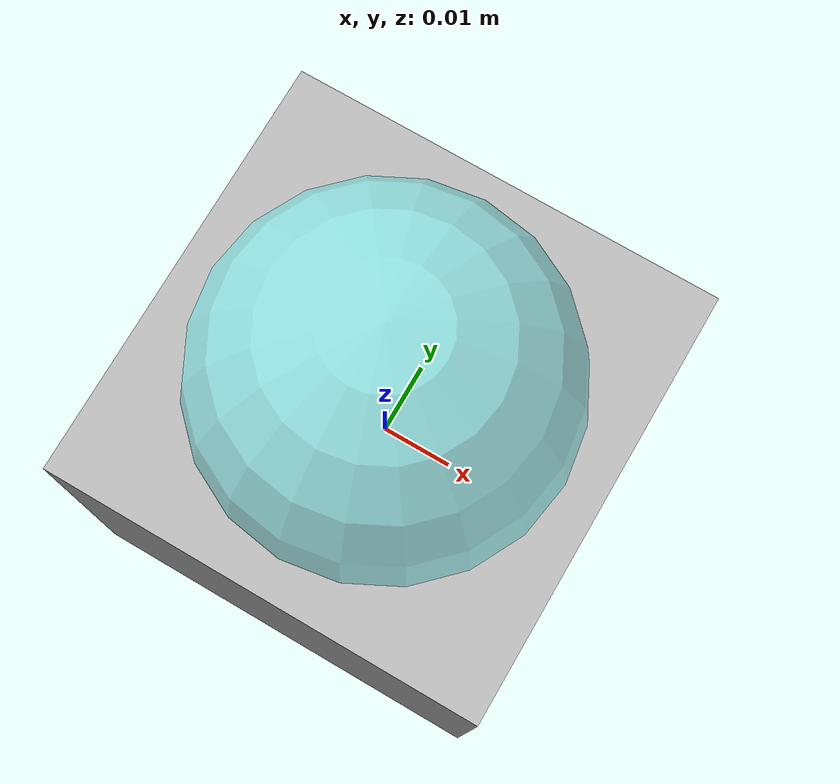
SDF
<?xml version="1.0" ?>
<sdf version="1.4">
  <model name='light_model'>
    <link name = "led_link"/>
    <link name='head'>
	    <pose>0 0 0 0 0 0</pose>
	      <inertial>
        <pose>0.01 0.025 0.025 0 -0 0</pose>
        <mass>0.05</mass>
        <inertia>
          <ixx>0.001</ixx>
          <ixy>0</ixy>
          <ixz>0</ixz>
          <iyy>0.001</iyy>
          <iyz>0</iyz>
          <izz>0.001</izz>
        </inertia>
      </inertial>
        <visual name='visual'>
          <geometry>
            <box>
              <size>0.06 0.06 0.05</size>
            </box>
          </geometry>
        </visual>
    </link>

    <link name='light_source'>
        <pose>0 0 0.025 0 0 0</pose>
        <light name='lamp' type='spot'>
          <pose>0 0 0.0 0 3.14159 0</pose>
          <attenuation>
            <range>30</range>
            <linear>0.05</linear>
          </attenuation>
          <diffuse>0.5 1 1 1</diffuse>
          <specular>1 1 1 1</specular>
          <spot>
            <inner_angle>0.3</inner_angle>
            <outer_angle>0.35</outer_angle>
            <falloff>1</falloff>
          </spot>
          <direction>0 0 -1</direction>
        </light>
        <visual name='lamp'>
          <geometry>
            <sphere>
              <radius>0.025</radius>
            </sphere>
          </geometry>
          <transparency>0.4</transparency>
          <material>
            <ambient>0.5 1 1 1</ambient>
            <diffuse>0.5 1 1 1</diffuse>
            <specular>1 1 1 1</specular>
            <emissive>0.5 1 1 1</emissive>
          </material>
        </visual>
    </link>

    <joint name='joint1' type='fixed'>
        <parent>led_link</parent>
        <child>head</child>
      </joint>

      <joint name='joint2' type='fixed'>
        <parent>head</parent>
        <child>light_source</child>
      </joint>

      <plugin name='light_control' filename='libLedPlugin.so'>
        <enable>true</enable>
        <light>
          <id>light_source/lamp</id>
          <duration>0.3</duration>
          <interval>0.4</interval>
          <enable>true</enable>
        </light>
      </plugin>
    </model>
</sdf>
